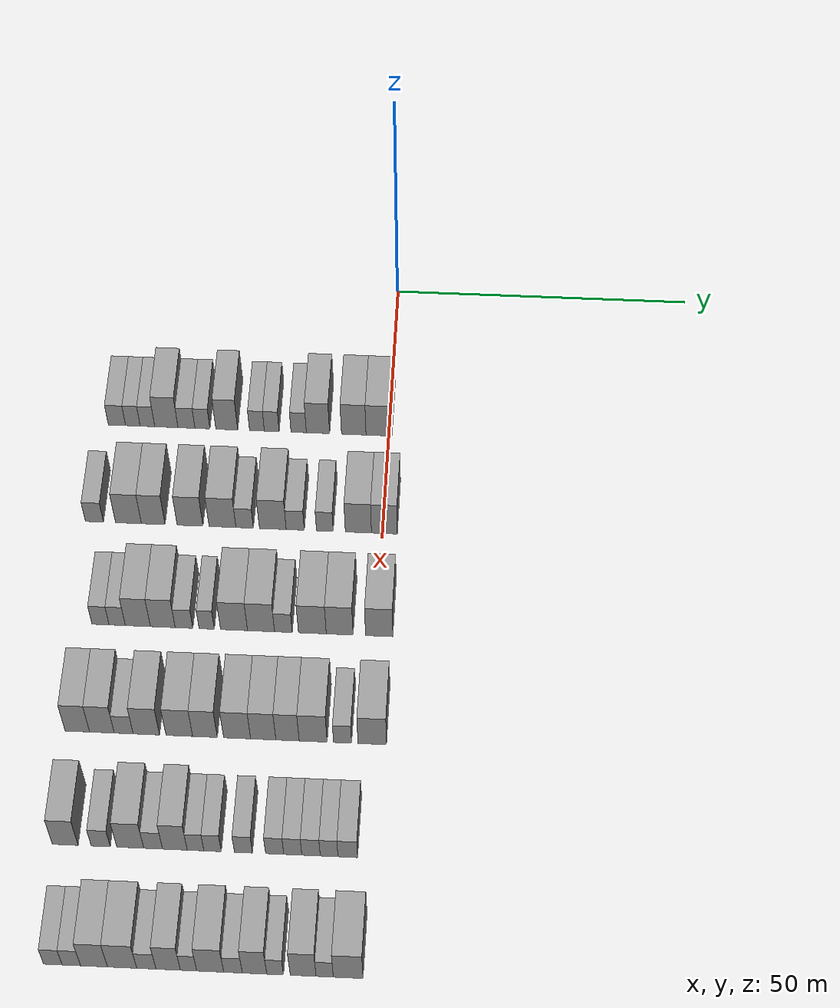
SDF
<sdf version="1.6">
 <world name="default">
  <model name="building_73">
   <static>1</static>
   <pose>25.0000 -45.8571 0 0.000000 0.000000 0.000000</pose>
   <link name="link">
    <pose>0 0 3.00 0 0 0</pose>
    <collision name="collision"><geometry><box><size>10.0000 2.9080 6.0000</size></box></geometry></collision>
    <visual name="visual">
     <cast_shadows>0</cast_shadows>
     <geometry><box><size>10.0000 2.9080 6.0000</size></box></geometry>
     <material>
      <script>
       <uri>model://grey_wall/materials/scripts</uri>
       <uri>model://grey_wall/materials/textures</uri>
       <name>vrc/grey_wall</name>
      </script>
     </material>
    </visual>
   </link>
  </model>
  <model name="building_74">
   <static>1</static>
   <pose>25.0000 -43.1696 0 0.000000 0.000000 0.000000</pose>
   <link name="link">
    <pose>0 0 3.00 0 0 0</pose>
    <collision name="collision"><geometry><box><size>10.0000 2.4669 6.0000</size></box></geometry></collision>
    <visual name="visual">
     <cast_shadows>0</cast_shadows>
     <geometry><box><size>10.0000 2.4669 6.0000</size></box></geometry>
     <material>
      <script>
       <uri>model://grey_wall/materials/scripts</uri>
       <uri>model://grey_wall/materials/textures</uri>
       <name>vrc/grey_wall</name>
      </script>
     </material>
    </visual>
   </link>
  </model>
  <model name="building_75">
   <static>1</static>
   <pose>25.0000 -40.7005 0 0.000000 0.000000 0.000000</pose>
   <link name="link">
    <pose>0 0 3.00 0 0 0</pose>
    <collision name="collision"><geometry><box><size>10.0000 2.4714 6.0000</size></box></geometry></collision>
    <visual name="visual">
     <cast_shadows>0</cast_shadows>
     <geometry><box><size>10.0000 2.4714 6.0000</size></box></geometry>
     <material>
      <script>
       <uri>model://grey_wall/materials/scripts</uri>
       <uri>model://grey_wall/materials/textures</uri>
       <name>vrc/grey_wall</name>
      </script>
     </material>
    </visual>
   </link>
  </model>
  <model name="building_76">
   <static>1</static>
   <pose>25.0000 -37.4976 0 0.000000 0.000000 0.000000</pose>
   <link name="link">
    <pose>0 0 4.50 0 0 0</pose>
    <collision name="collision"><geometry><box><size>10.0000 3.9343 9.0000</size></box></geometry></collision>
    <visual name="visual">
     <cast_shadows>0</cast_shadows>
     <geometry><box><size>10.0000 3.9343 9.0000</size></box></geometry>
     <material>
      <script>
       <uri>model://grey_wall/materials/scripts</uri>
       <uri>model://grey_wall/materials/textures</uri>
       <name>vrc/grey_wall</name>
      </script>
     </material>
    </visual>
   </link>
  </model>
  <model name="building_77">
   <static>1</static>
   <pose>25.0000 -34.1008 0 0.000000 0.000000 0.000000</pose>
   <link name="link">
    <pose>0 0 3.00 0 0 0</pose>
    <collision name="collision"><geometry><box><size>10.0000 2.8594 6.0000</size></box></geometry></collision>
    <visual name="visual">
     <cast_shadows>0</cast_shadows>
     <geometry><box><size>10.0000 2.8594 6.0000</size></box></geometry>
     <material>
      <script>
       <uri>model://grey_wall/materials/scripts</uri>
       <uri>model://grey_wall/materials/textures</uri>
       <name>vrc/grey_wall</name>
      </script>
     </material>
    </visual>
   </link>
  </model>
  <model name="building_78">
   <static>1</static>
   <pose>25.0000 -31.4041 0 0.000000 0.000000 0.000000</pose>
   <link name="link">
    <pose>0 0 3.00 0 0 0</pose>
    <collision name="collision"><geometry><box><size>10.0000 2.5339 6.0000</size></box></geometry></collision>
    <visual name="visual">
     <cast_shadows>0</cast_shadows>
     <geometry><box><size>10.0000 2.5339 6.0000</size></box></geometry>
     <material>
      <script>
       <uri>model://grey_wall/materials/scripts</uri>
       <uri>model://grey_wall/materials/textures</uri>
       <name>vrc/grey_wall</name>
      </script>
     </material>
    </visual>
   </link>
  </model>
  <model name="building_79">
   <static>1</static>
   <pose>25.0000 -27.2897 0 0.000000 0.000000 0.000000</pose>
   <link name="link">
    <pose>0 0 4.50 0 0 0</pose>
    <collision name="collision"><geometry><box><size>10.0000 3.6949 9.0000</size></box></geometry></collision>
    <visual name="visual">
     <cast_shadows>0</cast_shadows>
     <geometry><box><size>10.0000 3.6949 9.0000</size></box></geometry>
     <material>
      <script>
       <uri>model://grey_wall/materials/scripts</uri>
       <uri>model://grey_wall/materials/textures</uri>
       <name>vrc/grey_wall</name>
      </script>
     </material>
    </visual>
   </link>
  </model>
  <model name="building_80">
   <static>1</static>
   <pose>25.0000 -22.1949 0 0.000000 0.000000 0.000000</pose>
   <link name="link">
    <pose>0 0 3.00 0 0 0</pose>
    <collision name="collision"><geometry><box><size>10.0000 2.4945 6.0000</size></box></geometry></collision>
    <visual name="visual">
     <cast_shadows>0</cast_shadows>
     <geometry><box><size>10.0000 2.4945 6.0000</size></box></geometry>
     <material>
      <script>
       <uri>model://grey_wall/materials/scripts</uri>
       <uri>model://grey_wall/materials/textures</uri>
       <name>vrc/grey_wall</name>
      </script>
     </material>
    </visual>
   </link>
  </model>
  <model name="building_81">
   <static>1</static>
   <pose>25.0000 -19.7006 0 0.000000 0.000000 0.000000</pose>
   <link name="link">
    <pose>0 0 3.00 0 0 0</pose>
    <collision name="collision"><geometry><box><size>10.0000 2.4941 6.0000</size></box></geometry></collision>
    <visual name="visual">
     <cast_shadows>0</cast_shadows>
     <geometry><box><size>10.0000 2.4941 6.0000</size></box></geometry>
     <material>
      <script>
       <uri>model://grey_wall/materials/scripts</uri>
       <uri>model://grey_wall/materials/textures</uri>
       <name>vrc/grey_wall</name>
      </script>
     </material>
    </visual>
   </link>
  </model>
  <model name="building_82">
   <static>1</static>
   <pose>25.0000 -15.1579 0 0.000000 0.000000 0.000000</pose>
   <link name="link">
    <pose>0 0 3.00 0 0 0</pose>
    <collision name="collision"><geometry><box><size>10.0000 2.5913 6.0000</size></box></geometry></collision>
    <visual name="visual">
     <cast_shadows>0</cast_shadows>
     <geometry><box><size>10.0000 2.5913 6.0000</size></box></geometry>
     <material>
      <script>
       <uri>model://grey_wall/materials/scripts</uri>
       <uri>model://grey_wall/materials/textures</uri>
       <name>vrc/grey_wall</name>
      </script>
     </material>
    </visual>
   </link>
  </model>
  <model name="building_83">
   <static>1</static>
   <pose>25.0000 -11.9035 0 0.000000 0.000000 0.000000</pose>
   <link name="link">
    <pose>0 0 4.50 0 0 0</pose>
    <collision name="collision"><geometry><box><size>10.0000 3.9176 9.0000</size></box></geometry></collision>
    <visual name="visual">
     <cast_shadows>0</cast_shadows>
     <geometry><box><size>10.0000 3.9176 9.0000</size></box></geometry>
     <material>
      <script>
       <uri>model://grey_wall/materials/scripts</uri>
       <uri>model://grey_wall/materials/textures</uri>
       <name>vrc/grey_wall</name>
      </script>
     </material>
    </visual>
   </link>
  </model>
  <model name="building_84">
   <static>1</static>
   <pose>25.0000 -5.8807 0 0.000000 0.000000 0.000000</pose>
   <link name="link">
    <pose>0 0 4.50 0 0 0</pose>
    <collision name="collision"><geometry><box><size>10.0000 4.1279 9.0000</size></box></geometry></collision>
    <visual name="visual">
     <cast_shadows>0</cast_shadows>
     <geometry><box><size>10.0000 4.1279 9.0000</size></box></geometry>
     <material>
      <script>
       <uri>model://grey_wall/materials/scripts</uri>
       <uri>model://grey_wall/materials/textures</uri>
       <name>vrc/grey_wall</name>
      </script>
     </material>
    </visual>
   </link>
  </model>
  <model name="building_85">
   <static>1</static>
   <pose>25.0000 -1.6255 0 0.000000 0.000000 0.000000</pose>
   <link name="link">
    <pose>0 0 4.50 0 0 0</pose>
    <collision name="collision"><geometry><box><size>10.0000 4.3826 9.0000</size></box></geometry></collision>
    <visual name="visual">
     <cast_shadows>0</cast_shadows>
     <geometry><box><size>10.0000 4.3826 9.0000</size></box></geometry>
     <material>
      <script>
       <uri>model://grey_wall/materials/scripts</uri>
       <uri>model://grey_wall/materials/textures</uri>
       <name>vrc/grey_wall</name>
      </script>
     </material>
    </visual>
   </link>
  </model>
  <model name="building_246">
   <static>1</static>
   <pose>44.0000 -47.4243 0 0.000000 0.000000 0.000000</pose>
   <link name="link">
    <pose>0 0 3.00 0 0 0</pose>
    <collision name="collision"><geometry><box><size>10.0000 2.9789 6.0000</size></box></geometry></collision>
    <visual name="visual">
     <cast_shadows>0</cast_shadows>
     <geometry><box><size>10.0000 2.9789 6.0000</size></box></geometry>
     <material>
      <script>
       <uri>model://grey_wall/materials/scripts</uri>
       <uri>model://grey_wall/materials/textures</uri>
       <name>vrc/grey_wall</name>
      </script>
     </material>
    </visual>
   </link>
  </model>
  <model name="building_247">
   <static>1</static>
   <pose>44.0000 -41.8098 0 0.000000 0.000000 0.000000</pose>
   <link name="link">
    <pose>0 0 4.50 0 0 0</pose>
    <collision name="collision"><geometry><box><size>10.0000 4.2501 9.0000</size></box></geometry></collision>
    <visual name="visual">
     <cast_shadows>0</cast_shadows>
     <geometry><box><size>10.0000 4.2501 9.0000</size></box></geometry>
     <material>
      <script>
       <uri>model://grey_wall/materials/scripts</uri>
       <uri>model://grey_wall/materials/textures</uri>
       <name>vrc/grey_wall</name>
      </script>
     </material>
    </visual>
   </link>
  </model>
  <model name="building_248">
   <static>1</static>
   <pose>44.0000 -37.7242 0 0.000000 0.000000 0.000000</pose>
   <link name="link">
    <pose>0 0 4.50 0 0 0</pose>
    <collision name="collision"><geometry><box><size>10.0000 3.9211 9.0000</size></box></geometry></collision>
    <visual name="visual">
     <cast_shadows>0</cast_shadows>
     <geometry><box><size>10.0000 3.9211 9.0000</size></box></geometry>
     <material>
      <script>
       <uri>model://grey_wall/materials/scripts</uri>
       <uri>model://grey_wall/materials/textures</uri>
       <name>vrc/grey_wall</name>
      </script>
     </material>
    </visual>
   </link>
  </model>
  <model name="building_249">
   <static>1</static>
   <pose>44.0000 -31.6392 0 0.000000 0.000000 0.000000</pose>
   <link name="link">
    <pose>0 0 4.50 0 0 0</pose>
    <collision name="collision"><geometry><box><size>10.0000 4.2490 9.0000</size></box></geometry></collision>
    <visual name="visual">
     <cast_shadows>0</cast_shadows>
     <geometry><box><size>10.0000 4.2490 9.0000</size></box></geometry>
     <material>
      <script>
       <uri>model://grey_wall/materials/scripts</uri>
       <uri>model://grey_wall/materials/textures</uri>
       <name>vrc/grey_wall</name>
      </script>
     </material>
    </visual>
   </link>
  </model>
  <model name="building_250">
   <static>1</static>
   <pose>44.0000 -26.3021 0 0.000000 0.000000 0.000000</pose>
   <link name="link">
    <pose>0 0 4.50 0 0 0</pose>
    <collision name="collision"><geometry><box><size>10.0000 4.4252 9.0000</size></box></geometry></collision>
    <visual name="visual">
     <cast_shadows>0</cast_shadows>
     <geometry><box><size>10.0000 4.4252 9.0000</size></box></geometry>
     <material>
      <script>
       <uri>model://grey_wall/materials/scripts</uri>
       <uri>model://grey_wall/materials/textures</uri>
       <name>vrc/grey_wall</name>
      </script>
     </material>
    </visual>
   </link>
  </model>
  <model name="building_251">
   <static>1</static>
   <pose>44.0000 -22.6522 0 0.000000 0.000000 0.000000</pose>
   <link name="link">
    <pose>0 0 3.00 0 0 0</pose>
    <collision name="collision"><geometry><box><size>10.0000 2.8745 6.0000</size></box></geometry></collision>
    <visual name="visual">
     <cast_shadows>0</cast_shadows>
     <geometry><box><size>10.0000 2.8745 6.0000</size></box></geometry>
     <material>
      <script>
       <uri>model://grey_wall/materials/scripts</uri>
       <uri>model://grey_wall/materials/textures</uri>
       <name>vrc/grey_wall</name>
      </script>
     </material>
    </visual>
   </link>
  </model>
  <model name="building_252">
   <static>1</static>
   <pose>44.0000 -18.0150 0 0.000000 0.000000 0.000000</pose>
   <link name="link">
    <pose>0 0 4.50 0 0 0</pose>
    <collision name="collision"><geometry><box><size>10.0000 4.3998 9.0000</size></box></geometry></collision>
    <visual name="visual">
     <cast_shadows>0</cast_shadows>
     <geometry><box><size>10.0000 4.3998 9.0000</size></box></geometry>
     <material>
      <script>
       <uri>model://grey_wall/materials/scripts</uri>
       <uri>model://grey_wall/materials/textures</uri>
       <name>vrc/grey_wall</name>
      </script>
     </material>
    </visual>
   </link>
  </model>
  <model name="building_253">
   <static>1</static>
   <pose>44.0000 -14.3287 0 0.000000 0.000000 0.000000</pose>
   <link name="link">
    <pose>0 0 3.00 0 0 0</pose>
    <collision name="collision"><geometry><box><size>10.0000 2.9728 6.0000</size></box></geometry></collision>
    <visual name="visual">
     <cast_shadows>0</cast_shadows>
     <geometry><box><size>10.0000 2.9728 6.0000</size></box></geometry>
     <material>
      <script>
       <uri>model://grey_wall/materials/scripts</uri>
       <uri>model://grey_wall/materials/textures</uri>
       <name>vrc/grey_wall</name>
      </script>
     </material>
    </visual>
   </link>
  </model>
  <model name="building_254">
   <static>1</static>
   <pose>44.0000 -9.4655 0 0.000000 0.000000 0.000000</pose>
   <link name="link">
    <pose>0 0 3.00 0 0 0</pose>
    <collision name="collision"><geometry><box><size>10.0000 2.7535 6.0000</size></box></geometry></collision>
    <visual name="visual">
     <cast_shadows>0</cast_shadows>
     <geometry><box><size>10.0000 2.7535 6.0000</size></box></geometry>
     <material>
      <script>
       <uri>model://grey_wall/materials/scripts</uri>
       <uri>model://grey_wall/materials/textures</uri>
       <name>vrc/grey_wall</name>
      </script>
     </material>
    </visual>
   </link>
  </model>
  <model name="building_255">
   <static>1</static>
   <pose>44.0000 -3.9467 0 0.000000 0.000000 0.000000</pose>
   <link name="link">
    <pose>0 0 4.50 0 0 0</pose>
    <collision name="collision"><geometry><box><size>10.0000 4.2841 9.0000</size></box></geometry></collision>
    <visual name="visual">
     <cast_shadows>0</cast_shadows>
     <geometry><box><size>10.0000 4.2841 9.0000</size></box></geometry>
     <material>
      <script>
       <uri>model://grey_wall/materials/scripts</uri>
       <uri>model://grey_wall/materials/textures</uri>
       <name>vrc/grey_wall</name>
      </script>
     </material>
    </visual>
   </link>
  </model>
  <model name="building_256">
   <static>1</static>
   <pose>44.0000 0.3203 0 0.000000 0.000000 0.000000</pose>
   <link name="link">
    <pose>0 0 4.50 0 0 0</pose>
    <collision name="collision"><geometry><box><size>10.0000 4.2499 9.0000</size></box></geometry></collision>
    <visual name="visual">
     <cast_shadows>0</cast_shadows>
     <geometry><box><size>10.0000 4.2499 9.0000</size></box></geometry>
     <material>
      <script>
       <uri>model://grey_wall/materials/scripts</uri>
       <uri>model://grey_wall/materials/textures</uri>
       <name>vrc/grey_wall</name>
      </script>
     </material>
    </visual>
   </link>
  </model>
  <model name="building_429">
   <static>1</static>
   <pose>63.0000 -44.1875 0 0.000000 0.000000 0.000000</pose>
   <link name="link">
    <pose>0 0 3.00 0 0 0</pose>
    <collision name="collision"><geometry><box><size>10.0000 2.7401 6.0000</size></box></geometry></collision>
    <visual name="visual">
     <cast_shadows>0</cast_shadows>
     <geometry><box><size>10.0000 2.7401 6.0000</size></box></geometry>
     <material>
      <script>
       <uri>model://grey_wall/materials/scripts</uri>
       <uri>model://grey_wall/materials/textures</uri>
       <name>vrc/grey_wall</name>
      </script>
     </material>
    </visual>
   </link>
  </model>
  <model name="building_430">
   <static>1</static>
   <pose>63.0000 -41.5119 0 0.000000 0.000000 0.000000</pose>
   <link name="link">
    <pose>0 0 3.00 0 0 0</pose>
    <collision name="collision"><geometry><box><size>10.0000 2.6111 6.0000</size></box></geometry></collision>
    <visual name="visual">
     <cast_shadows>0</cast_shadows>
     <geometry><box><size>10.0000 2.6111 6.0000</size></box></geometry>
     <material>
      <script>
       <uri>model://grey_wall/materials/scripts</uri>
       <uri>model://grey_wall/materials/textures</uri>
       <name>vrc/grey_wall</name>
      </script>
     </material>
    </visual>
   </link>
  </model>
  <model name="building_431">
   <static>1</static>
   <pose>63.0000 -38.1894 0 0.000000 0.000000 0.000000</pose>
   <link name="link">
    <pose>0 0 4.50 0 0 0</pose>
    <collision name="collision"><geometry><box><size>10.0000 4.0340 9.0000</size></box></geometry></collision>
    <visual name="visual">
     <cast_shadows>0</cast_shadows>
     <geometry><box><size>10.0000 4.0340 9.0000</size></box></geometry>
     <material>
      <script>
       <uri>model://grey_wall/materials/scripts</uri>
       <uri>model://grey_wall/materials/textures</uri>
       <name>vrc/grey_wall</name>
      </script>
     </material>
    </visual>
   </link>
  </model>
  <model name="building_432">
   <static>1</static>
   <pose>63.0000 -34.1788 0 0.000000 0.000000 0.000000</pose>
   <link name="link">
    <pose>0 0 4.50 0 0 0</pose>
    <collision name="collision"><geometry><box><size>10.0000 3.9871 9.0000</size></box></geometry></collision>
    <visual name="visual">
     <cast_shadows>0</cast_shadows>
     <geometry><box><size>10.0000 3.9871 9.0000</size></box></geometry>
     <material>
      <script>
       <uri>model://grey_wall/materials/scripts</uri>
       <uri>model://grey_wall/materials/textures</uri>
       <name>vrc/grey_wall</name>
      </script>
     </material>
    </visual>
   </link>
  </model>
  <model name="building_433">
   <static>1</static>
   <pose>63.0000 -30.7658 0 0.000000 0.000000 0.000000</pose>
   <link name="link">
    <pose>0 0 3.00 0 0 0</pose>
    <collision name="collision"><geometry><box><size>10.0000 2.8389 6.0000</size></box></geometry></collision>
    <visual name="visual">
     <cast_shadows>0</cast_shadows>
     <geometry><box><size>10.0000 2.8389 6.0000</size></box></geometry>
     <material>
      <script>
       <uri>model://grey_wall/materials/scripts</uri>
       <uri>model://grey_wall/materials/textures</uri>
       <name>vrc/grey_wall</name>
      </script>
     </material>
    </visual>
   </link>
  </model>
  <model name="building_434">
   <static>1</static>
   <pose>63.0000 -27.1218 0 0.000000 0.000000 0.000000</pose>
   <link name="link">
    <pose>0 0 3.00 0 0 0</pose>
    <collision name="collision"><geometry><box><size>10.0000 2.4491 6.0000</size></box></geometry></collision>
    <visual name="visual">
     <cast_shadows>0</cast_shadows>
     <geometry><box><size>10.0000 2.4491 6.0000</size></box></geometry>
     <material>
      <script>
       <uri>model://grey_wall/materials/scripts</uri>
       <uri>model://grey_wall/materials/textures</uri>
       <name>vrc/grey_wall</name>
      </script>
     </material>
    </visual>
   </link>
  </model>
  <model name="building_435">
   <static>1</static>
   <pose>63.0000 -22.7321 0 0.000000 0.000000 0.000000</pose>
   <link name="link">
    <pose>0 0 4.50 0 0 0</pose>
    <collision name="collision"><geometry><box><size>10.0000 4.3303 9.0000</size></box></geometry></collision>
    <visual name="visual">
     <cast_shadows>0</cast_shadows>
     <geometry><box><size>10.0000 4.3303 9.0000</size></box></geometry>
     <material>
      <script>
       <uri>model://grey_wall/materials/scripts</uri>
       <uri>model://grey_wall/materials/textures</uri>
       <name>vrc/grey_wall</name>
      </script>
     </material>
    </visual>
   </link>
  </model>
  <model name="building_436">
   <static>1</static>
   <pose>63.0000 -18.3976 0 0.000000 0.000000 0.000000</pose>
   <link name="link">
    <pose>0 0 4.50 0 0 0</pose>
    <collision name="collision"><geometry><box><size>10.0000 4.3386 9.0000</size></box></geometry></collision>
    <visual name="visual">
     <cast_shadows>0</cast_shadows>
     <geometry><box><size>10.0000 4.3386 9.0000</size></box></geometry>
     <material>
      <script>
       <uri>model://grey_wall/materials/scripts</uri>
       <uri>model://grey_wall/materials/textures</uri>
       <name>vrc/grey_wall</name>
      </script>
     </material>
    </visual>
   </link>
  </model>
  <model name="building_437">
   <static>1</static>
   <pose>63.0000 -14.8115 0 0.000000 0.000000 0.000000</pose>
   <link name="link">
    <pose>0 0 3.00 0 0 0</pose>
    <collision name="collision"><geometry><box><size>10.0000 2.8336 6.0000</size></box></geometry></collision>
    <visual name="visual">
     <cast_shadows>0</cast_shadows>
     <geometry><box><size>10.0000 2.8336 6.0000</size></box></geometry>
     <material>
      <script>
       <uri>model://grey_wall/materials/scripts</uri>
       <uri>model://grey_wall/materials/textures</uri>
       <name>vrc/grey_wall</name>
      </script>
     </material>
    </visual>
   </link>
  </model>
  <model name="building_438">
   <static>1</static>
   <pose>63.0000 -10.1738 0 0.000000 0.000000 0.000000</pose>
   <link name="link">
    <pose>0 0 4.50 0 0 0</pose>
    <collision name="collision"><geometry><box><size>10.0000 4.4419 9.0000</size></box></geometry></collision>
    <visual name="visual">
     <cast_shadows>0</cast_shadows>
     <geometry><box><size>10.0000 4.4419 9.0000</size></box></geometry>
     <material>
      <script>
       <uri>model://grey_wall/materials/scripts</uri>
       <uri>model://grey_wall/materials/textures</uri>
       <name>vrc/grey_wall</name>
      </script>
     </material>
    </visual>
   </link>
  </model>
  <model name="building_439">
   <static>1</static>
   <pose>63.0000 -5.8018 0 0.000000 0.000000 0.000000</pose>
   <link name="link">
    <pose>0 0 4.50 0 0 0</pose>
    <collision name="collision"><geometry><box><size>10.0000 4.3022 9.0000</size></box></geometry></collision>
    <visual name="visual">
     <cast_shadows>0</cast_shadows>
     <geometry><box><size>10.0000 4.3022 9.0000</size></box></geometry>
     <material>
      <script>
       <uri>model://grey_wall/materials/scripts</uri>
       <uri>model://grey_wall/materials/textures</uri>
       <name>vrc/grey_wall</name>
      </script>
     </material>
    </visual>
   </link>
  </model>
  <model name="building_440">
   <static>1</static>
   <pose>63.0000 0.5310 0 0.000000 0.000000 0.000000</pose>
   <link name="link">
    <pose>0 0 4.50 0 0 0</pose>
    <collision name="collision"><geometry><box><size>10.0000 4.3633 9.0000</size></box></geometry></collision>
    <visual name="visual">
     <cast_shadows>0</cast_shadows>
     <geometry><box><size>10.0000 4.3633 9.0000</size></box></geometry>
     <material>
      <script>
       <uri>model://grey_wall/materials/scripts</uri>
       <uri>model://grey_wall/materials/textures</uri>
       <name>vrc/grey_wall</name>
      </script>
     </material>
    </visual>
   </link>
  </model>
  <model name="building_590">
   <static>1</static>
   <pose>82.0000 -45.5978 0 0.000000 0.000000 0.000000</pose>
   <link name="link">
    <pose>0 0 4.50 0 0 0</pose>
    <collision name="collision"><geometry><box><size>10.0000 3.8319 9.0000</size></box></geometry></collision>
    <visual name="visual">
     <cast_shadows>0</cast_shadows>
     <geometry><box><size>10.0000 3.8319 9.0000</size></box></geometry>
     <material>
      <script>
       <uri>model://grey_wall/materials/scripts</uri>
       <uri>model://grey_wall/materials/textures</uri>
       <name>vrc/grey_wall</name>
      </script>
     </material>
    </visual>
   </link>
  </model>
  <model name="building_591">
   <static>1</static>
   <pose>82.0000 -41.7468 0 0.000000 0.000000 0.000000</pose>
   <link name="link">
    <pose>0 0 4.50 0 0 0</pose>
    <collision name="collision"><geometry><box><size>10.0000 3.8700 9.0000</size></box></geometry></collision>
    <visual name="visual">
     <cast_shadows>0</cast_shadows>
     <geometry><box><size>10.0000 3.8700 9.0000</size></box></geometry>
     <material>
      <script>
       <uri>model://grey_wall/materials/scripts</uri>
       <uri>model://grey_wall/materials/textures</uri>
       <name>vrc/grey_wall</name>
      </script>
     </material>
    </visual>
   </link>
  </model>
  <model name="building_592">
   <static>1</static>
   <pose>82.0000 -38.3289 0 0.000000 0.000000 0.000000</pose>
   <link name="link">
    <pose>0 0 3.00 0 0 0</pose>
    <collision name="collision"><geometry><box><size>10.0000 2.9658 6.0000</size></box></geometry></collision>
    <visual name="visual">
     <cast_shadows>0</cast_shadows>
     <geometry><box><size>10.0000 2.9658 6.0000</size></box></geometry>
     <material>
      <script>
       <uri>model://grey_wall/materials/scripts</uri>
       <uri>model://grey_wall/materials/textures</uri>
       <name>vrc/grey_wall</name>
      </script>
     </material>
    </visual>
   </link>
  </model>
  <model name="building_593">
   <static>1</static>
   <pose>82.0000 -34.7792 0 0.000000 0.000000 0.000000</pose>
   <link name="link">
    <pose>0 0 4.50 0 0 0</pose>
    <collision name="collision"><geometry><box><size>10.0000 4.1336 9.0000</size></box></geometry></collision>
    <visual name="visual">
     <cast_shadows>0</cast_shadows>
     <geometry><box><size>10.0000 4.1336 9.0000</size></box></geometry>
     <material>
      <script>
       <uri>model://grey_wall/materials/scripts</uri>
       <uri>model://grey_wall/materials/textures</uri>
       <name>vrc/grey_wall</name>
      </script>
     </material>
    </visual>
   </link>
  </model>
  <model name="building_594">
   <static>1</static>
   <pose>82.0000 -29.6258 0 0.000000 0.000000 0.000000</pose>
   <link name="link">
    <pose>0 0 4.50 0 0 0</pose>
    <collision name="collision"><geometry><box><size>10.0000 4.1731 9.0000</size></box></geometry></collision>
    <visual name="visual">
     <cast_shadows>0</cast_shadows>
     <geometry><box><size>10.0000 4.1731 9.0000</size></box></geometry>
     <material>
      <script>
       <uri>model://grey_wall/materials/scripts</uri>
       <uri>model://grey_wall/materials/textures</uri>
       <name>vrc/grey_wall</name>
      </script>
     </material>
    </visual>
   </link>
  </model>
  <model name="building_595">
   <static>1</static>
   <pose>82.0000 -25.6099 0 0.000000 0.000000 0.000000</pose>
   <link name="link">
    <pose>0 0 4.50 0 0 0</pose>
    <collision name="collision"><geometry><box><size>10.0000 3.8588 9.0000</size></box></geometry></collision>
    <visual name="visual">
     <cast_shadows>0</cast_shadows>
     <geometry><box><size>10.0000 3.8588 9.0000</size></box></geometry>
     <material>
      <script>
       <uri>model://grey_wall/materials/scripts</uri>
       <uri>model://grey_wall/materials/textures</uri>
       <name>vrc/grey_wall</name>
      </script>
     </material>
    </visual>
   </link>
  </model>
  <model name="building_596">
   <static>1</static>
   <pose>82.0000 -20.5812 0 0.000000 0.000000 0.000000</pose>
   <link name="link">
    <pose>0 0 4.50 0 0 0</pose>
    <collision name="collision"><geometry><box><size>10.0000 4.1985 9.0000</size></box></geometry></collision>
    <visual name="visual">
     <cast_shadows>0</cast_shadows>
     <geometry><box><size>10.0000 4.1985 9.0000</size></box></geometry>
     <material>
      <script>
       <uri>model://grey_wall/materials/scripts</uri>
       <uri>model://grey_wall/materials/textures</uri>
       <name>vrc/grey_wall</name>
      </script>
     </material>
    </visual>
   </link>
  </model>
  <model name="building_597">
   <static>1</static>
   <pose>82.0000 -16.5096 0 0.000000 0.000000 0.000000</pose>
   <link name="link">
    <pose>0 0 4.50 0 0 0</pose>
    <collision name="collision"><geometry><box><size>10.0000 3.9447 9.0000</size></box></geometry></collision>
    <visual name="visual">
     <cast_shadows>0</cast_shadows>
     <geometry><box><size>10.0000 3.9447 9.0000</size></box></geometry>
     <material>
      <script>
       <uri>model://grey_wall/materials/scripts</uri>
       <uri>model://grey_wall/materials/textures</uri>
       <name>vrc/grey_wall</name>
      </script>
     </material>
    </visual>
   </link>
  </model>
  <model name="building_598">
   <static>1</static>
   <pose>82.0000 -12.7133 0 0.000000 0.000000 0.000000</pose>
   <link name="link">
    <pose>0 0 4.50 0 0 0</pose>
    <collision name="collision"><geometry><box><size>10.0000 3.6478 9.0000</size></box></geometry></collision>
    <visual name="visual">
     <cast_shadows>0</cast_shadows>
     <geometry><box><size>10.0000 3.6478 9.0000</size></box></geometry>
     <material>
      <script>
       <uri>model://grey_wall/materials/scripts</uri>
       <uri>model://grey_wall/materials/textures</uri>
       <name>vrc/grey_wall</name>
      </script>
     </material>
    </visual>
   </link>
  </model>
  <model name="building_599">
   <static>1</static>
   <pose>82.0000 -8.7084 0 0.000000 0.000000 0.000000</pose>
   <link name="link">
    <pose>0 0 4.50 0 0 0</pose>
    <collision name="collision"><geometry><box><size>10.0000 4.3619 9.0000</size></box></geometry></collision>
    <visual name="visual">
     <cast_shadows>0</cast_shadows>
     <geometry><box><size>10.0000 4.3619 9.0000</size></box></geometry>
     <material>
      <script>
       <uri>model://grey_wall/materials/scripts</uri>
       <uri>model://grey_wall/materials/textures</uri>
       <name>vrc/grey_wall</name>
      </script>
     </material>
    </visual>
   </link>
  </model>
  <model name="building_600">
   <static>1</static>
   <pose>82.0000 -4.1194 0 0.000000 0.000000 0.000000</pose>
   <link name="link">
    <pose>0 0 3.00 0 0 0</pose>
    <collision name="collision"><geometry><box><size>10.0000 2.8161 6.0000</size></box></geometry></collision>
    <visual name="visual">
     <cast_shadows>0</cast_shadows>
     <geometry><box><size>10.0000 2.8161 6.0000</size></box></geometry>
     <material>
      <script>
       <uri>model://grey_wall/materials/scripts</uri>
       <uri>model://grey_wall/materials/textures</uri>
       <name>vrc/grey_wall</name>
      </script>
     </material>
    </visual>
   </link>
  </model>
  <model name="building_601">
   <static>1</static>
   <pose>82.0000 0.5053 0 0.000000 0.000000 0.000000</pose>
   <link name="link">
    <pose>0 0 4.50 0 0 0</pose>
    <collision name="collision"><geometry><box><size>10.0000 4.4334 9.0000</size></box></geometry></collision>
    <visual name="visual">
     <cast_shadows>0</cast_shadows>
     <geometry><box><size>10.0000 4.4334 9.0000</size></box></geometry>
     <material>
      <script>
       <uri>model://grey_wall/materials/scripts</uri>
       <uri>model://grey_wall/materials/textures</uri>
       <name>vrc/grey_wall</name>
      </script>
     </material>
    </visual>
   </link>
  </model>
  <model name="building_765">
   <static>1</static>
   <pose>101.0000 -45.1322 0 0.000000 0.000000 0.000000</pose>
   <link name="link">
    <pose>0 0 4.50 0 0 0</pose>
    <collision name="collision"><geometry><box><size>10.0000 3.9301 9.0000</size></box></geometry></collision>
    <visual name="visual">
     <cast_shadows>0</cast_shadows>
     <geometry><box><size>10.0000 3.9301 9.0000</size></box></geometry>
     <material>
      <script>
       <uri>model://grey_wall/materials/scripts</uri>
       <uri>model://grey_wall/materials/textures</uri>
       <name>vrc/grey_wall</name>
      </script>
     </material>
    </visual>
   </link>
  </model>
  <model name="building_766">
   <static>1</static>
   <pose>101.0000 -39.7158 0 0.000000 0.000000 0.000000</pose>
   <link name="link">
    <pose>0 0 3.00 0 0 0</pose>
    <collision name="collision"><geometry><box><size>10.0000 2.9026 6.0000</size></box></geometry></collision>
    <visual name="visual">
     <cast_shadows>0</cast_shadows>
     <geometry><box><size>10.0000 2.9026 6.0000</size></box></geometry>
     <material>
      <script>
       <uri>model://grey_wall/materials/scripts</uri>
       <uri>model://grey_wall/materials/textures</uri>
       <name>vrc/grey_wall</name>
      </script>
     </material>
    </visual>
   </link>
  </model>
  <model name="building_767">
   <static>1</static>
   <pose>101.0000 -35.2101 0 0.000000 0.000000 0.000000</pose>
   <link name="link">
    <pose>0 0 4.50 0 0 0</pose>
    <collision name="collision"><geometry><box><size>10.0000 4.1088 9.0000</size></box></geometry></collision>
    <visual name="visual">
     <cast_shadows>0</cast_shadows>
     <geometry><box><size>10.0000 4.1088 9.0000</size></box></geometry>
     <material>
      <script>
       <uri>model://grey_wall/materials/scripts</uri>
       <uri>model://grey_wall/materials/textures</uri>
       <name>vrc/grey_wall</name>
      </script>
     </material>
    </visual>
   </link>
  </model>
  <model name="building_768">
   <static>1</static>
   <pose>101.0000 -31.7201 0 0.000000 0.000000 0.000000</pose>
   <link name="link">
    <pose>0 0 3.00 0 0 0</pose>
    <collision name="collision"><geometry><box><size>10.0000 2.8714 6.0000</size></box></geometry></collision>
    <visual name="visual">
     <cast_shadows>0</cast_shadows>
     <geometry><box><size>10.0000 2.8714 6.0000</size></box></geometry>
     <material>
      <script>
       <uri>model://grey_wall/materials/scripts</uri>
       <uri>model://grey_wall/materials/textures</uri>
       <name>vrc/grey_wall</name>
      </script>
     </material>
    </visual>
   </link>
  </model>
  <model name="building_769">
   <static>1</static>
   <pose>101.0000 -28.4059 0 0.000000 0.000000 0.000000</pose>
   <link name="link">
    <pose>0 0 4.50 0 0 0</pose>
    <collision name="collision"><geometry><box><size>10.0000 3.7571 9.0000</size></box></geometry></collision>
    <visual name="visual">
     <cast_shadows>0</cast_shadows>
     <geometry><box><size>10.0000 3.7571 9.0000</size></box></geometry>
     <material>
      <script>
       <uri>model://grey_wall/materials/scripts</uri>
       <uri>model://grey_wall/materials/textures</uri>
       <name>vrc/grey_wall</name>
      </script>
     </material>
    </visual>
   </link>
  </model>
  <model name="building_770">
   <static>1</static>
   <pose>101.0000 -25.2556 0 0.000000 0.000000 0.000000</pose>
   <link name="link">
    <pose>0 0 3.00 0 0 0</pose>
    <collision name="collision"><geometry><box><size>10.0000 2.5434 6.0000</size></box></geometry></collision>
    <visual name="visual">
     <cast_shadows>0</cast_shadows>
     <geometry><box><size>10.0000 2.5434 6.0000</size></box></geometry>
     <material>
      <script>
       <uri>model://grey_wall/materials/scripts</uri>
       <uri>model://grey_wall/materials/textures</uri>
       <name>vrc/grey_wall</name>
      </script>
     </material>
    </visual>
   </link>
  </model>
  <model name="building_771">
   <static>1</static>
   <pose>101.0000 -22.6611 0 0.000000 0.000000 0.000000</pose>
   <link name="link">
    <pose>0 0 3.00 0 0 0</pose>
    <collision name="collision"><geometry><box><size>10.0000 2.6455 6.0000</size></box></geometry></collision>
    <visual name="visual">
     <cast_shadows>0</cast_shadows>
     <geometry><box><size>10.0000 2.6455 6.0000</size></box></geometry>
     <material>
      <script>
       <uri>model://grey_wall/materials/scripts</uri>
       <uri>model://grey_wall/materials/textures</uri>
       <name>vrc/grey_wall</name>
      </script>
     </material>
    </visual>
   </link>
  </model>
  <model name="building_772">
   <static>1</static>
   <pose>101.0000 -17.9680 0 0.000000 0.000000 0.000000</pose>
   <link name="link">
    <pose>0 0 3.00 0 0 0</pose>
    <collision name="collision"><geometry><box><size>10.0000 2.7408 6.0000</size></box></geometry></collision>
    <visual name="visual">
     <cast_shadows>0</cast_shadows>
     <geometry><box><size>10.0000 2.7408 6.0000</size></box></geometry>
     <material>
      <script>
       <uri>model://grey_wall/materials/scripts</uri>
       <uri>model://grey_wall/materials/textures</uri>
       <name>vrc/grey_wall</name>
      </script>
     </material>
    </visual>
   </link>
  </model>
  <model name="building_773">
   <static>1</static>
   <pose>101.0000 -13.2182 0 0.000000 0.000000 0.000000</pose>
   <link name="link">
    <pose>0 0 3.00 0 0 0</pose>
    <collision name="collision"><geometry><box><size>10.0000 2.7588 6.0000</size></box></geometry></collision>
    <visual name="visual">
     <cast_shadows>0</cast_shadows>
     <geometry><box><size>10.0000 2.7588 6.0000</size></box></geometry>
     <material>
      <script>
       <uri>model://grey_wall/materials/scripts</uri>
       <uri>model://grey_wall/materials/textures</uri>
       <name>vrc/grey_wall</name>
      </script>
     </material>
    </visual>
   </link>
  </model>
  <model name="building_774">
   <static>1</static>
   <pose>101.0000 -10.4670 0 0.000000 0.000000 0.000000</pose>
   <link name="link">
    <pose>0 0 3.00 0 0 0</pose>
    <collision name="collision"><geometry><box><size>10.0000 2.7435 6.0000</size></box></geometry></collision>
    <visual name="visual">
     <cast_shadows>0</cast_shadows>
     <geometry><box><size>10.0000 2.7435 6.0000</size></box></geometry>
     <material>
      <script>
       <uri>model://grey_wall/materials/scripts</uri>
       <uri>model://grey_wall/materials/textures</uri>
       <name>vrc/grey_wall</name>
      </script>
     </material>
    </visual>
   </link>
  </model>
  <model name="building_775">
   <static>1</static>
   <pose>101.0000 -7.6964 0 0.000000 0.000000 0.000000</pose>
   <link name="link">
    <pose>0 0 3.00 0 0 0</pose>
    <collision name="collision"><geometry><box><size>10.0000 2.7978 6.0000</size></box></geometry></collision>
    <visual name="visual">
     <cast_shadows>0</cast_shadows>
     <geometry><box><size>10.0000 2.7978 6.0000</size></box></geometry>
     <material>
      <script>
       <uri>model://grey_wall/materials/scripts</uri>
       <uri>model://grey_wall/materials/textures</uri>
       <name>vrc/grey_wall</name>
      </script>
     </material>
    </visual>
   </link>
  </model>
  <model name="building_776">
   <static>1</static>
   <pose>101.0000 -4.9535 0 0.000000 0.000000 0.000000</pose>
   <link name="link">
    <pose>0 0 3.00 0 0 0</pose>
    <collision name="collision"><geometry><box><size>10.0000 2.6879 6.0000</size></box></geometry></collision>
    <visual name="visual">
     <cast_shadows>0</cast_shadows>
     <geometry><box><size>10.0000 2.6879 6.0000</size></box></geometry>
     <material>
      <script>
       <uri>model://grey_wall/materials/scripts</uri>
       <uri>model://grey_wall/materials/textures</uri>
       <name>vrc/grey_wall</name>
      </script>
     </material>
    </visual>
   </link>
  </model>
  <model name="building_777">
   <static>1</static>
   <pose>101.0000 -2.1187 0 0.000000 0.000000 0.000000</pose>
   <link name="link">
    <pose>0 0 3.00 0 0 0</pose>
    <collision name="collision"><geometry><box><size>10.0000 2.9818 6.0000</size></box></geometry></collision>
    <visual name="visual">
     <cast_shadows>0</cast_shadows>
     <geometry><box><size>10.0000 2.9818 6.0000</size></box></geometry>
     <material>
      <script>
       <uri>model://grey_wall/materials/scripts</uri>
       <uri>model://grey_wall/materials/textures</uri>
       <name>vrc/grey_wall</name>
      </script>
     </material>
    </visual>
   </link>
  </model>
  <model name="building_938">
   <static>1</static>
   <pose>120.0000 -44.5972 0 0.000000 0.000000 0.000000</pose>
   <link name="link">
    <pose>0 0 3.00 0 0 0</pose>
    <collision name="collision"><geometry><box><size>10.0000 2.7472 6.0000</size></box></geometry></collision>
    <visual name="visual">
     <cast_shadows>0</cast_shadows>
     <geometry><box><size>10.0000 2.7472 6.0000</size></box></geometry>
     <material>
      <script>
       <uri>model://grey_wall/materials/scripts</uri>
       <uri>model://grey_wall/materials/textures</uri>
       <name>vrc/grey_wall</name>
      </script>
     </material>
    </visual>
   </link>
  </model>
  <model name="building_939">
   <static>1</static>
   <pose>120.0000 -41.8556 0 0.000000 0.000000 0.000000</pose>
   <link name="link">
    <pose>0 0 3.00 0 0 0</pose>
    <collision name="collision"><geometry><box><size>10.0000 2.7358 6.0000</size></box></geometry></collision>
    <visual name="visual">
     <cast_shadows>0</cast_shadows>
     <geometry><box><size>10.0000 2.7358 6.0000</size></box></geometry>
     <material>
      <script>
       <uri>model://grey_wall/materials/scripts</uri>
       <uri>model://grey_wall/materials/textures</uri>
       <name>vrc/grey_wall</name>
      </script>
     </material>
    </visual>
   </link>
  </model>
  <model name="building_940">
   <static>1</static>
   <pose>120.0000 -38.4943 0 0.000000 0.000000 0.000000</pose>
   <link name="link">
    <pose>0 0 4.50 0 0 0</pose>
    <collision name="collision"><geometry><box><size>10.0000 3.9868 9.0000</size></box></geometry></collision>
    <visual name="visual">
     <cast_shadows>0</cast_shadows>
     <geometry><box><size>10.0000 3.9868 9.0000</size></box></geometry>
     <material>
      <script>
       <uri>model://grey_wall/materials/scripts</uri>
       <uri>model://grey_wall/materials/textures</uri>
       <name>vrc/grey_wall</name>
      </script>
     </material>
    </visual>
   </link>
  </model>
  <model name="building_941">
   <static>1</static>
   <pose>120.0000 -34.3271 0 0.000000 0.000000 0.000000</pose>
   <link name="link">
    <pose>0 0 4.50 0 0 0</pose>
    <collision name="collision"><geometry><box><size>10.0000 4.3477 9.0000</size></box></geometry></collision>
    <visual name="visual">
     <cast_shadows>0</cast_shadows>
     <geometry><box><size>10.0000 4.3477 9.0000</size></box></geometry>
     <material>
      <script>
       <uri>model://grey_wall/materials/scripts</uri>
       <uri>model://grey_wall/materials/textures</uri>
       <name>vrc/grey_wall</name>
      </script>
     </material>
    </visual>
   </link>
  </model>
  <model name="building_942">
   <static>1</static>
   <pose>120.0000 -30.7206 0 0.000000 0.000000 0.000000</pose>
   <link name="link">
    <pose>0 0 3.00 0 0 0</pose>
    <collision name="collision"><geometry><box><size>10.0000 2.8654 6.0000</size></box></geometry></collision>
    <visual name="visual">
     <cast_shadows>0</cast_shadows>
     <geometry><box><size>10.0000 2.8654 6.0000</size></box></geometry>
     <material>
      <script>
       <uri>model://grey_wall/materials/scripts</uri>
       <uri>model://grey_wall/materials/textures</uri>
       <name>vrc/grey_wall</name>
      </script>
     </material>
    </visual>
   </link>
  </model>
  <model name="building_943">
   <static>1</static>
   <pose>120.0000 -27.4791 0 0.000000 0.000000 0.000000</pose>
   <link name="link">
    <pose>0 0 4.50 0 0 0</pose>
    <collision name="collision"><geometry><box><size>10.0000 3.6176 9.0000</size></box></geometry></collision>
    <visual name="visual">
     <cast_shadows>0</cast_shadows>
     <geometry><box><size>10.0000 3.6176 9.0000</size></box></geometry>
     <material>
      <script>
       <uri>model://grey_wall/materials/scripts</uri>
       <uri>model://grey_wall/materials/textures</uri>
       <name>vrc/grey_wall</name>
      </script>
     </material>
    </visual>
   </link>
  </model>
  <model name="building_944">
   <static>1</static>
   <pose>120.0000 -24.4647 0 0.000000 0.000000 0.000000</pose>
   <link name="link">
    <pose>0 0 3.00 0 0 0</pose>
    <collision name="collision"><geometry><box><size>10.0000 2.4111 6.0000</size></box></geometry></collision>
    <visual name="visual">
     <cast_shadows>0</cast_shadows>
     <geometry><box><size>10.0000 2.4111 6.0000</size></box></geometry>
     <material>
      <script>
       <uri>model://grey_wall/materials/scripts</uri>
       <uri>model://grey_wall/materials/textures</uri>
       <name>vrc/grey_wall</name>
      </script>
     </material>
    </visual>
   </link>
  </model>
  <model name="building_945">
   <static>1</static>
   <pose>120.0000 -21.2615 0 0.000000 0.000000 0.000000</pose>
   <link name="link">
    <pose>0 0 4.50 0 0 0</pose>
    <collision name="collision"><geometry><box><size>10.0000 3.9954 9.0000</size></box></geometry></collision>
    <visual name="visual">
     <cast_shadows>0</cast_shadows>
     <geometry><box><size>10.0000 3.9954 9.0000</size></box></geometry>
     <material>
      <script>
       <uri>model://grey_wall/materials/scripts</uri>
       <uri>model://grey_wall/materials/textures</uri>
       <name>vrc/grey_wall</name>
      </script>
     </material>
    </visual>
   </link>
  </model>
  <model name="building_946">
   <static>1</static>
   <pose>120.0000 -17.8879 0 0.000000 0.000000 0.000000</pose>
   <link name="link">
    <pose>0 0 3.00 0 0 0</pose>
    <collision name="collision"><geometry><box><size>10.0000 2.7517 6.0000</size></box></geometry></collision>
    <visual name="visual">
     <cast_shadows>0</cast_shadows>
     <geometry><box><size>10.0000 2.7517 6.0000</size></box></geometry>
     <material>
      <script>
       <uri>model://grey_wall/materials/scripts</uri>
       <uri>model://grey_wall/materials/textures</uri>
       <name>vrc/grey_wall</name>
      </script>
     </material>
    </visual>
   </link>
  </model>
  <model name="building_947">
   <static>1</static>
   <pose>120.0000 -14.7042 0 0.000000 0.000000 0.000000</pose>
   <link name="link">
    <pose>0 0 4.50 0 0 0</pose>
    <collision name="collision"><geometry><box><size>10.0000 3.6158 9.0000</size></box></geometry></collision>
    <visual name="visual">
     <cast_shadows>0</cast_shadows>
     <geometry><box><size>10.0000 3.6158 9.0000</size></box></geometry>
     <material>
      <script>
       <uri>model://grey_wall/materials/scripts</uri>
       <uri>model://grey_wall/materials/textures</uri>
       <name>vrc/grey_wall</name>
      </script>
     </material>
    </visual>
   </link>
  </model>
  <model name="building_948">
   <static>1</static>
   <pose>120.0000 -11.6616 0 0.000000 0.000000 0.000000</pose>
   <link name="link">
    <pose>0 0 3.00 0 0 0</pose>
    <collision name="collision"><geometry><box><size>10.0000 2.4694 6.0000</size></box></geometry></collision>
    <visual name="visual">
     <cast_shadows>0</cast_shadows>
     <geometry><box><size>10.0000 2.4694 6.0000</size></box></geometry>
     <material>
      <script>
       <uri>model://grey_wall/materials/scripts</uri>
       <uri>model://grey_wall/materials/textures</uri>
       <name>vrc/grey_wall</name>
      </script>
     </material>
    </visual>
   </link>
  </model>
  <model name="building_949">
   <static>1</static>
   <pose>120.0000 -7.5165 0 0.000000 0.000000 0.000000</pose>
   <link name="link">
    <pose>0 0 4.50 0 0 0</pose>
    <collision name="collision"><geometry><box><size>10.0000 3.8207 9.0000</size></box></geometry></collision>
    <visual name="visual">
     <cast_shadows>0</cast_shadows>
     <geometry><box><size>10.0000 3.8207 9.0000</size></box></geometry>
     <material>
      <script>
       <uri>model://grey_wall/materials/scripts</uri>
       <uri>model://grey_wall/materials/textures</uri>
       <name>vrc/grey_wall</name>
      </script>
     </material>
    </visual>
   </link>
  </model>
  <model name="building_950">
   <static>1</static>
   <pose>120.0000 -4.3353 0 0.000000 0.000000 0.000000</pose>
   <link name="link">
    <pose>0 0 3.00 0 0 0</pose>
    <collision name="collision"><geometry><box><size>10.0000 2.5418 6.0000</size></box></geometry></collision>
    <visual name="visual">
     <cast_shadows>0</cast_shadows>
     <geometry><box><size>10.0000 2.5418 6.0000</size></box></geometry>
     <material>
      <script>
       <uri>model://grey_wall/materials/scripts</uri>
       <uri>model://grey_wall/materials/textures</uri>
       <name>vrc/grey_wall</name>
      </script>
     </material>
    </visual>
   </link>
  </model>
  <model name="building_951">
   <static>1</static>
   <pose>120.0000 -0.8665 0 0.000000 0.000000 0.000000</pose>
   <link name="link">
    <pose>0 0 4.50 0 0 0</pose>
    <collision name="collision"><geometry><box><size>10.0000 4.3957 9.0000</size></box></geometry></collision>
    <visual name="visual">
     <cast_shadows>0</cast_shadows>
     <geometry><box><size>10.0000 4.3957 9.0000</size></box></geometry>
     <material>
      <script>
       <uri>model://grey_wall/materials/scripts</uri>
       <uri>model://grey_wall/materials/textures</uri>
       <name>vrc/grey_wall</name>
      </script>
     </material>
    </visual>
   </link>
  </model>
 </world>
</sdf>
